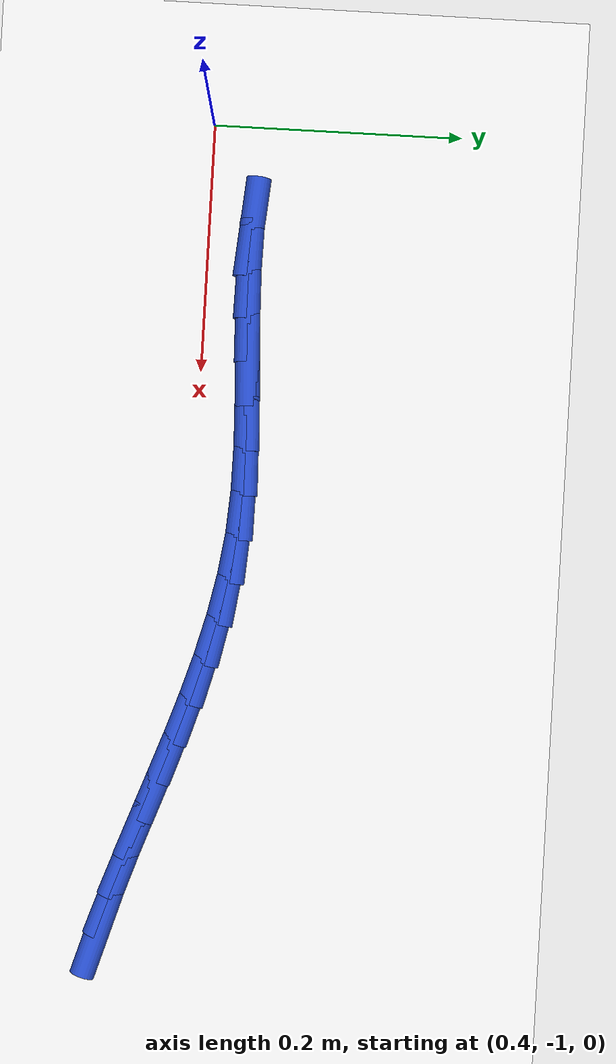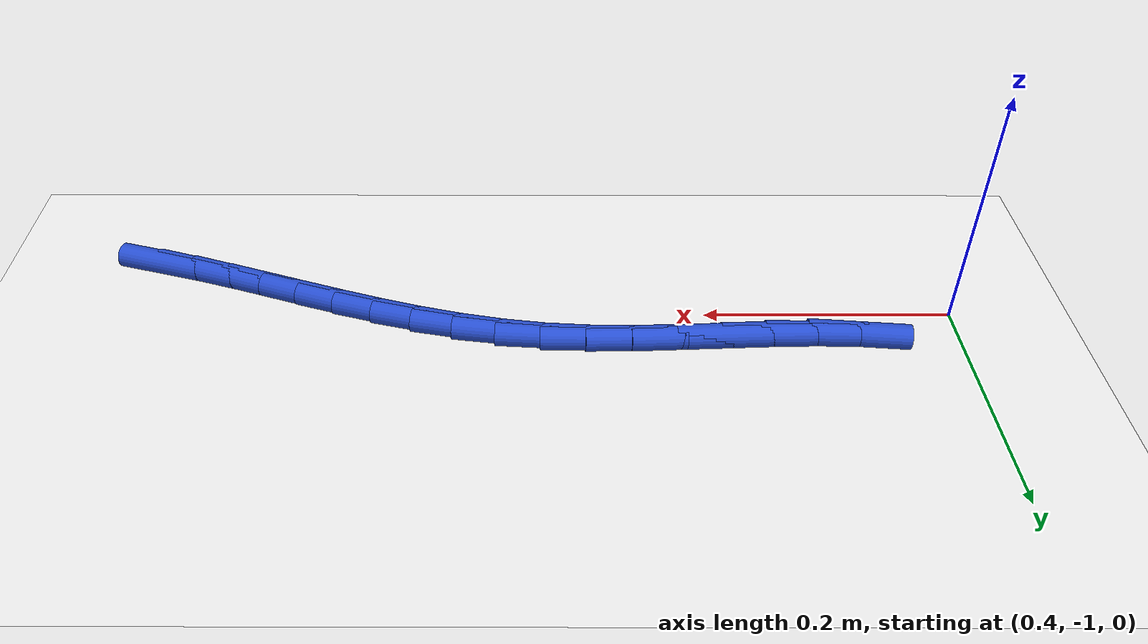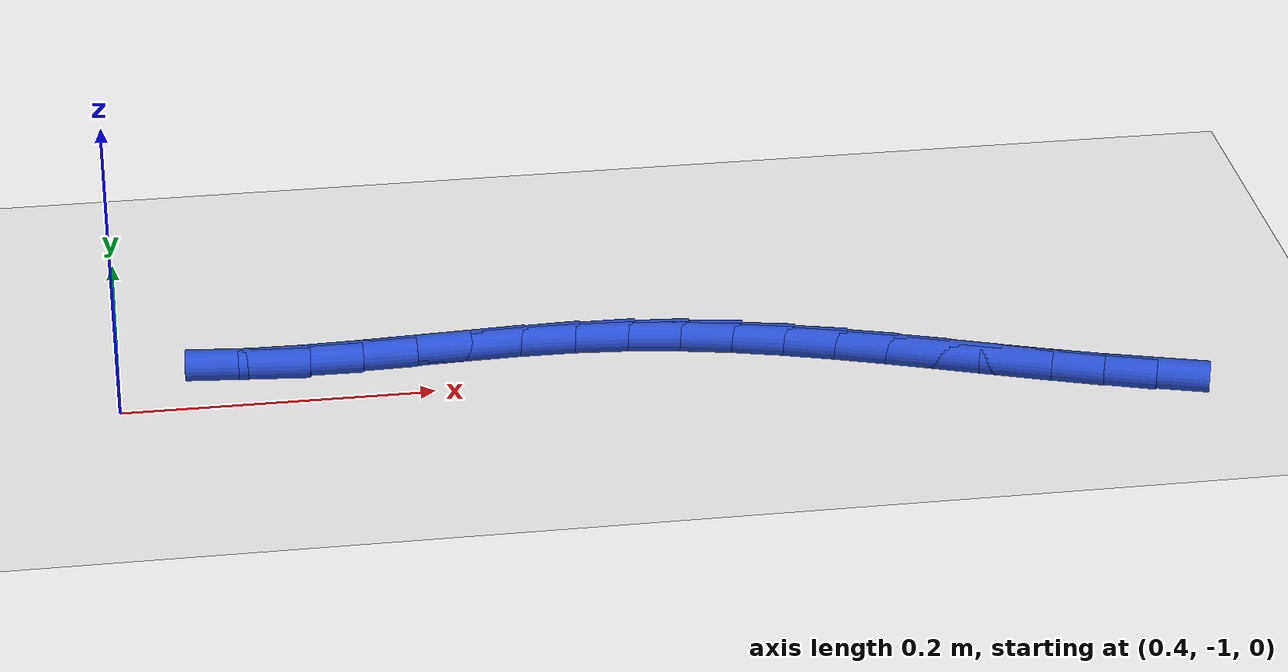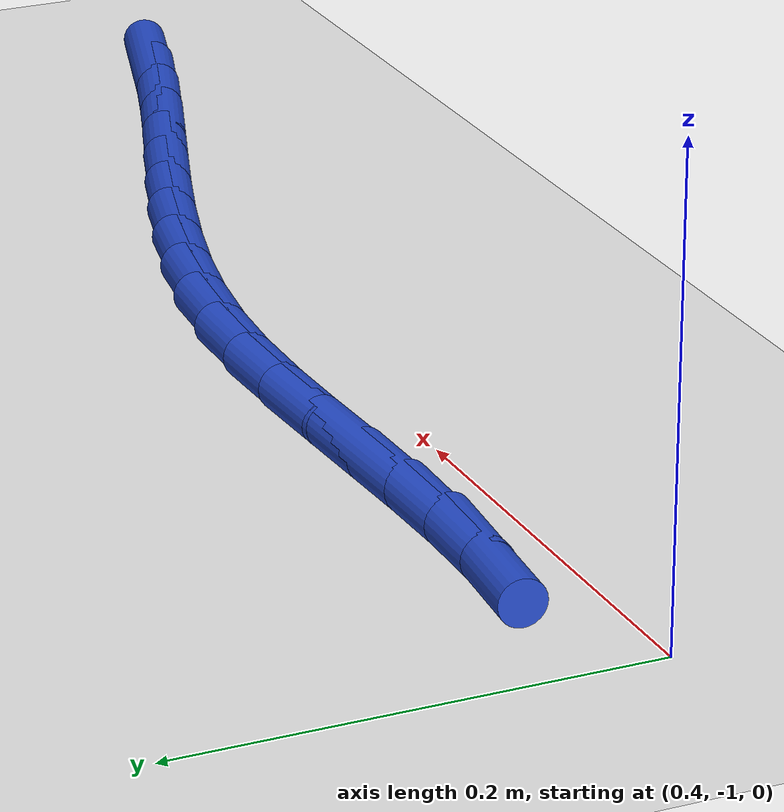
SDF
<sdf version="1.6">
 <world name="default">
  <model name="ground_plane">
   <static>1</static>
   <link name="link">
    <collision name="collision">
     <geometry><plane><normal>0 0 1</normal><size>100 100</size></plane></geometry>
     <surface><friction><ode><mu>100</mu><mu2>50</mu2></ode></friction></surface>
    </collision>
    <visual name="visual">
     <cast_shadows>0</cast_shadows>
     <geometry><plane><normal>0 0 1</normal><size>100 100</size></plane></geometry>
     <material>
      <script><uri>file://media/materials/scripts/gazebo.material</uri><name>Gazebo/WhiteGlow</name></script>
     </material>
    </visual>
   </link>
  </model>
  <model name="line">
   <link name="link_159">
    <pose>1.0514990998601004 -1.0571013916540386 0.01 0 1.57 -0.2887548620048184</pose>
    <collision name="collision">
     <geometry><cylinder><radius>0.01</radius><length>0.08</length></cylinder></geometry>
    </collision>
    <visual name="visual">
     <material>
      <script><name>Gazebo/Blue</name><uri>file://media/materials/scripts/gazebo.material</uri></script>
     </material>
     <geometry><cylinder><radius>0.01</radius><length>0.08</length></cylinder></geometry>
    </visual>
   </link>
   <link name="link_160">
    <pose>1.0196225067238474 -1.0476322178640052 0.01 0 1.57 -0.32004129176441676</pose>
    <collision name="collision">
     <geometry><cylinder><radius>0.01</radius><length>0.08</length></cylinder></geometry>
    </collision>
    <visual name="visual">
     <material>
      <script><name>Gazebo/Blue</name><uri>file://media/materials/scripts/gazebo.material</uri></script>
     </material>
     <geometry><cylinder><radius>0.01</radius><length>0.08</length></cylinder></geometry>
    </visual>
   </link>
   <link name="link_161">
    <pose>0.9880096080512308 -1.0371545894508734 0.01 0 1.57 -0.339161358256831</pose>
    <collision name="collision">
     <geometry><cylinder><radius>0.01</radius><length>0.08</length></cylinder></geometry>
    </collision>
    <visual name="visual">
     <material>
      <script><name>Gazebo/Blue</name><uri>file://media/materials/scripts/gazebo.material</uri></script>
     </material>
     <geometry><cylinder><radius>0.01</radius><length>0.08</length></cylinder></geometry>
    </visual>
   </link>
   <link name="link_162">
    <pose>0.9565337180961292 -1.026050097648848 0.01 0 1.57 -0.34617889748599107</pose>
    <collision name="collision">
     <geometry><cylinder><radius>0.01</radius><length>0.08</length></cylinder></geometry>
    </collision>
    <visual name="visual">
     <material>
      <script><name>Gazebo/Blue</name><uri>file://media/materials/scripts/gazebo.material</uri></script>
     </material>
     <geometry><cylinder><radius>0.01</radius><length>0.08</length></cylinder></geometry>
    </visual>
   </link>
   <link name="link_163">
    <pose>0.9250681511124211 -1.0147003336921354 0.01 0 1.57 -0.341174496175491</pose>
    <collision name="collision">
     <geometry><cylinder><radius>0.01</radius><length>0.08</length></cylinder></geometry>
    </collision>
    <visual name="visual">
     <material>
      <script><name>Gazebo/Blue</name><uri>file://media/materials/scripts/gazebo.material</uri></script>
     </material>
     <geometry><cylinder><radius>0.01</radius><length>0.08</length></cylinder></geometry>
    </visual>
   </link>
   <link name="link_164">
    <pose>0.8934862213539855 -1.0034868888149415 0.01 0 1.57 -0.32421475073153194</pose>
    <collision name="collision">
     <geometry><cylinder><radius>0.01</radius><length>0.08</length></cylinder></geometry>
    </collision>
    <visual name="visual">
     <material>
      <script><name>Gazebo/Blue</name><uri>file://media/materials/scripts/gazebo.material</uri></script>
     </material>
     <geometry><cylinder><radius>0.01</radius><length>0.08</length></cylinder></geometry>
    </visual>
   </link>
   <link name="link_165">
    <pose>0.8616612430747023 -0.992791354251472 0.01 0 1.57 -0.2953738098589616</pose>
    <collision name="collision">
     <geometry><cylinder><radius>0.01</radius><length>0.08</length></cylinder></geometry>
    </collision>
    <visual name="visual">
     <material>
      <script><name>Gazebo/Blue</name><uri>file://media/materials/scripts/gazebo.material</uri></script>
     </material>
     <geometry><cylinder><radius>0.01</radius><length>0.08</length></cylinder></geometry>
    </visual>
   </link>
   <link name="link_166">
    <pose>0.8294665305284494 -0.982995321235932 0.01 0 1.57 -0.25480483722599084</pose>
    <collision name="collision">
     <geometry><cylinder><radius>0.01</radius><length>0.08</length></cylinder></geometry>
    </collision>
    <visual name="visual">
     <material>
      <script><name>Gazebo/Blue</name><uri>file://media/materials/scripts/gazebo.material</uri></script>
     </material>
     <geometry><cylinder><radius>0.01</radius><length>0.08</length></cylinder></geometry>
    </visual>
   </link>
   <link name="link_167">
    <pose>0.7967753979691063 -0.9744803810025279 0.01 0 1.57 -0.20285637477967586</pose>
    <collision name="collision">
     <geometry><cylinder><radius>0.01</radius><length>0.08</length></cylinder></geometry>
    </collision>
    <visual name="visual">
     <material>
      <script><name>Gazebo/Blue</name><uri>file://media/materials/scripts/gazebo.material</uri></script>
     </material>
     <geometry><cylinder><radius>0.01</radius><length>0.08</length></cylinder></geometry>
    </visual>
   </link>
   <link name="link_168">
    <pose>0.7634611596505517 -0.9676281247854653 0.01 0 1.57 -0.14021914180088177</pose>
    <collision name="collision">
     <geometry><cylinder><radius>0.01</radius><length>0.08</length></cylinder></geometry>
    </collision>
    <visual name="visual">
     <material>
      <script><name>Gazebo/Blue</name><uri>file://media/materials/scripts/gazebo.material</uri></script>
     </material>
     <geometry><cylinder><radius>0.01</radius><length>0.08</length></cylinder></geometry>
    </visual>
   </link>
   <link name="link_169">
    <pose>0.7293971298266645 -0.9628201438189498 0.01 0 1.57 -0.0692607519994189</pose>
    <collision name="collision">
     <geometry><cylinder><radius>0.01</radius><length>0.08</length></cylinder></geometry>
    </collision>
    <visual name="visual">
     <material>
      <script><name>Gazebo/Blue</name><uri>file://media/materials/scripts/gazebo.material</uri></script>
     </material>
     <geometry><cylinder><radius>0.01</radius><length>0.08</length></cylinder></geometry>
    </visual>
   </link>
   <link name="link_170">
    <pose>0.694474681212322 -0.9603975136994641 0.01 0 1.57 -0.008345489670803717</pose>
    <collision name="collision">
     <geometry><cylinder><radius>0.01</radius><length>0.08</length></cylinder></geometry>
    </collision>
    <visual name="visual">
     <material>
      <script><name>Gazebo/Blue</name><uri>file://media/materials/scripts/gazebo.material</uri></script>
     </material>
     <geometry><cylinder><radius>0.01</radius><length>0.08</length></cylinder></geometry>
    </visual>
   </link>
   <link name="link_171">
    <pose>0.658853098629068 -0.9601002272482031 0.01 0 1.57 0.03080415683316025</pose>
    <collision name="collision">
     <geometry><cylinder><radius>0.01</radius><length>0.08</length></cylinder></geometry>
    </collision>
    <visual name="visual">
     <material>
      <script><name>Gazebo/Blue</name><uri>file://media/materials/scripts/gazebo.material</uri></script>
     </material>
     <geometry><cylinder><radius>0.01</radius><length>0.08</length></cylinder></geometry>
    </visual>
   </link>
   <link name="link_172">
    <pose>0.6228967381674534 -0.9612081830821653 0.01 0 1.57 0.04955110469744828</pose>
    <collision name="collision">
     <geometry><cylinder><radius>0.01</radius><length>0.08</length></cylinder></geometry>
    </collision>
    <visual name="visual">
     <material>
      <script><name>Gazebo/Blue</name><uri>file://media/materials/scripts/gazebo.material</uri></script>
     </material>
     <geometry><cylinder><radius>0.01</radius><length>0.08</length></cylinder></geometry>
    </visual>
   </link>
   <link name="link_173">
    <pose>0.5869751640374443 -0.9629895949754721 0.01 0 1.57 0.048475968563843376</pose>
    <collision name="collision">
     <geometry><cylinder><radius>0.01</radius><length>0.08</length></cylinder></geometry>
    </collision>
    <visual name="visual">
     <material>
      <script><name>Gazebo/Blue</name><uri>file://media/materials/scripts/gazebo.material</uri></script>
     </material>
     <geometry><cylinder><radius>0.01</radius><length>0.08</length></cylinder></geometry>
    </visual>
   </link>
   <link name="link_174">
    <pose>0.5514579404490072 -0.9647126767022463 0.01 0 1.57 0.026846642197358928</pose>
    <collision name="collision">
     <geometry><cylinder><radius>0.01</radius><length>0.08</length></cylinder></geometry>
    </collision>
    <visual name="visual">
     <material>
      <script><name>Gazebo/Blue</name><uri>file://media/materials/scripts/gazebo.material</uri></script>
     </material>
     <geometry><cylinder><radius>0.01</radius><length>0.08</length></cylinder></geometry>
    </visual>
   </link>
   <link name="link_175">
    <pose>0.5167146316121078 -0.9656456420366085 0.01 0 1.57 -0.01752618939187883</pose>
    <collision name="collision">
     <geometry><cylinder><radius>0.01</radius><length>0.08</length></cylinder></geometry>
    </collision>
    <visual name="visual">
     <material>
      <script><name>Gazebo/Blue</name><uri>file://media/materials/scripts/gazebo.material</uri></script>
     </material>
     <geometry><cylinder><radius>0.01</radius><length>0.08</length></cylinder></geometry>
    </visual>
   </link>
   <link name="link_176">
    <pose>0.4831148017367121 -0.9650567047526812 0.01 0 1.57 -0.08836111230715173</pose>
    <collision name="collision">
     <geometry><cylinder><radius>0.01</radius><length>0.08</length></cylinder></geometry>
    </collision>
    <visual name="visual">
     <material>
      <script><name>Gazebo/Blue</name><uri>file://media/materials/scripts/gazebo.material</uri></script>
     </material>
     <geometry><cylinder><radius>0.01</radius><length>0.08</length></cylinder></geometry>
    </visual>
   </link>
  </model>
 </world>
</sdf>
